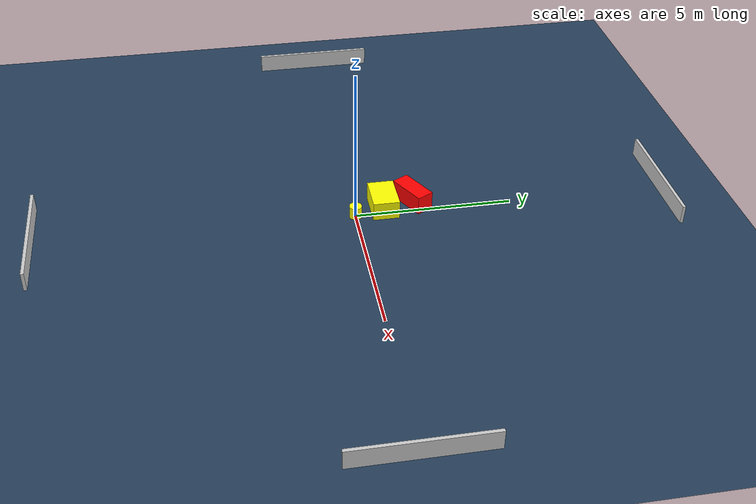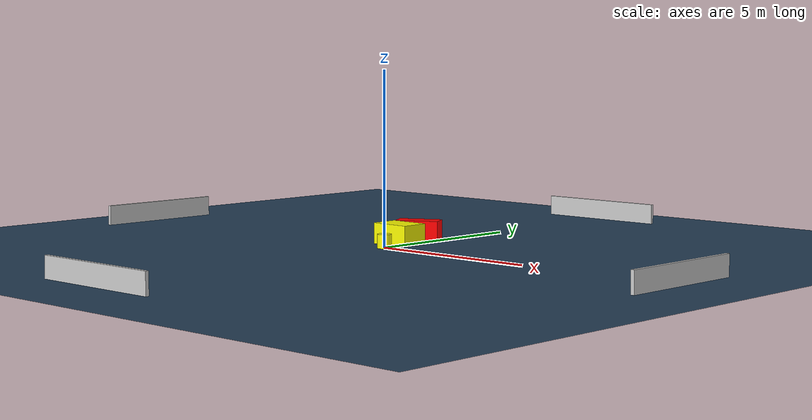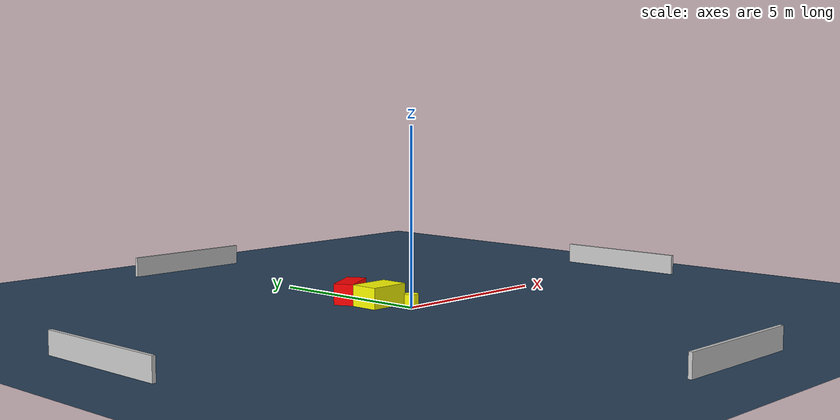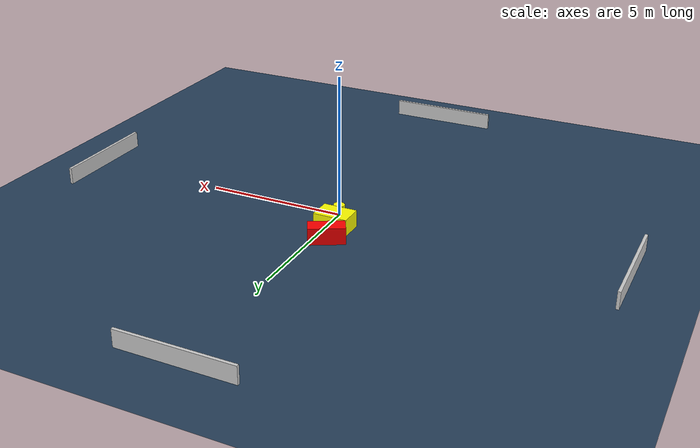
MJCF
<?xml version="1.0" ?>
<mujoco model="generated_environment">
  <option timestep="0.01" integrator="RK4" cone="elliptic"/>
  <default>
    <geom density="1"/>
  </default>
  <asset>
    <texture builtin="gradient" height="3072" name="skybox" rgb1="0.3 0.5 0.7" rgb2="0 0 0" type="skybox" width="512"/>
    <texture builtin="checker" height="300" name="groundplane" rgb1="0.2 0.3 0.4" rgb2="0.1 0.2 0.3" type="2d" width="300"/>
    <material name="groundplane" reflectance="0.2" texrepeat="5 5" texture="groundplane"/>
  </asset>
  <worldbody>
    <light dir="0 0 -1" directional="true" pos="0 0 1.5"/>
    <geom condim="3" friction="0.5 0.005 0.001" material="groundplane" name="floor" pos="0 0 0" size="0 0 0.05" type="plane"/>
    <body name="walls">
      <geom name="wall_1" condim="4" pos="-10.0 0.0 0.3" rgba="0.800000011920929 0.800000011920929 0.800000011920929 1.0" size="0.05 2.0 0.3" type="box"/>
      <geom name="wall_2" condim="4" pos="10.0 0.0 0.3" rgba="0.800000011920929 0.800000011920929 0.800000011920929 1.0" size="0.05 2.0 0.3" type="box"/>
      <geom name="wall_3" condim="4" pos="0.0 -10.0 0.3" rgba="0.800000011920929 0.800000011920929 0.800000011920929 1.0" size="2.0 0.05 0.3" type="box"/>
      <geom name="wall_4" condim="4" pos="0.0 10.0 0.3" rgba="0.800000011920929 0.800000011920929 0.800000011920929 1.0" size="2.0 0.05 0.3" type="box"/>
    </body>
    <body name="robot">
      <joint name="joint_x" type="slide" pos="0 0 0" axis="1 0 0"/>
      <joint name="joint_y" type="slide" pos="0 0 0" axis="0 1 0"/>
      <geom name="robot" type="cylinder" pos="0.0 0.0 0.2" size="0.2 0.2 0.0" mass="5.0" friction="1.0 0.005 0.0001" condim="4" rgba="1.0 1.0 0.0 1.0"/>
    </body>
    <body name="obstacle_1_movable">
      <geom name="obstacle_1_movable" condim="4" pos="-0.30641927380953804 0.9380347417888159 0.3" euler="0 0 89.77079169372867" friction="0.0 0.005 0.001" rgba="1.0 1.0 0.0 1.0" size="0.41938389450234675 0.6058115829317195 0.3" type="box" mass="0.1"/>
      <joint type="free"/>
    </body>
    <body name="obstacle_2_static">
      <geom name="obstacle_2_static" condim="4" pos="-0.4724890549450755 1.918204910660073 0.3" euler="0 0 118.46785075114457" friction="0.0 0.005 0.001" rgba="1.0 0.0 0.0 1.0" size="0.2813847659783222 0.6291619156617038 0.3" type="box"/>
    </body>
  </worldbody>
  <actuator>
    <motor name="actuator_x" joint="joint_x" gear="1" ctrlrange="-1 1"/>
    <motor name="actuator_y" joint="joint_y" gear="1" ctrlrange="-1 1"/>
  </actuator>
</mujoco>
